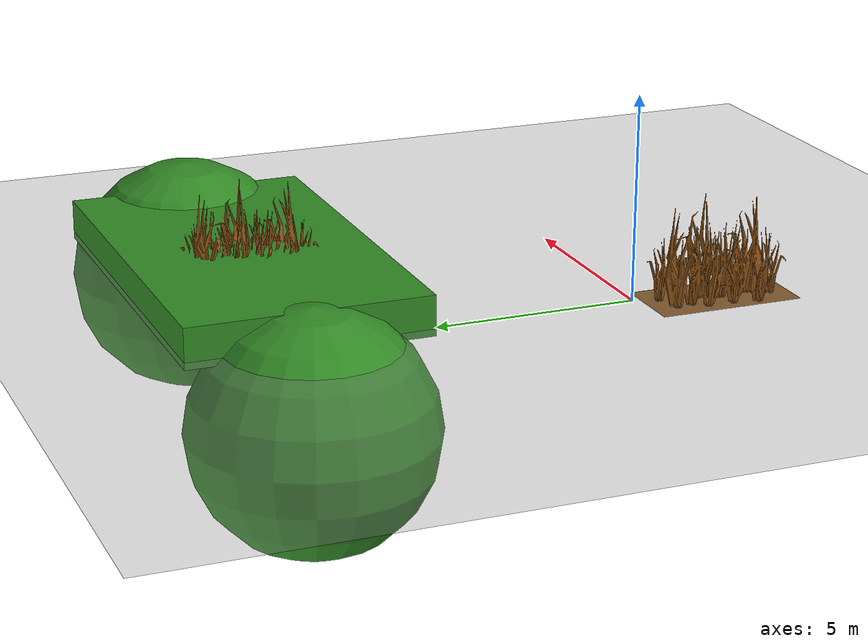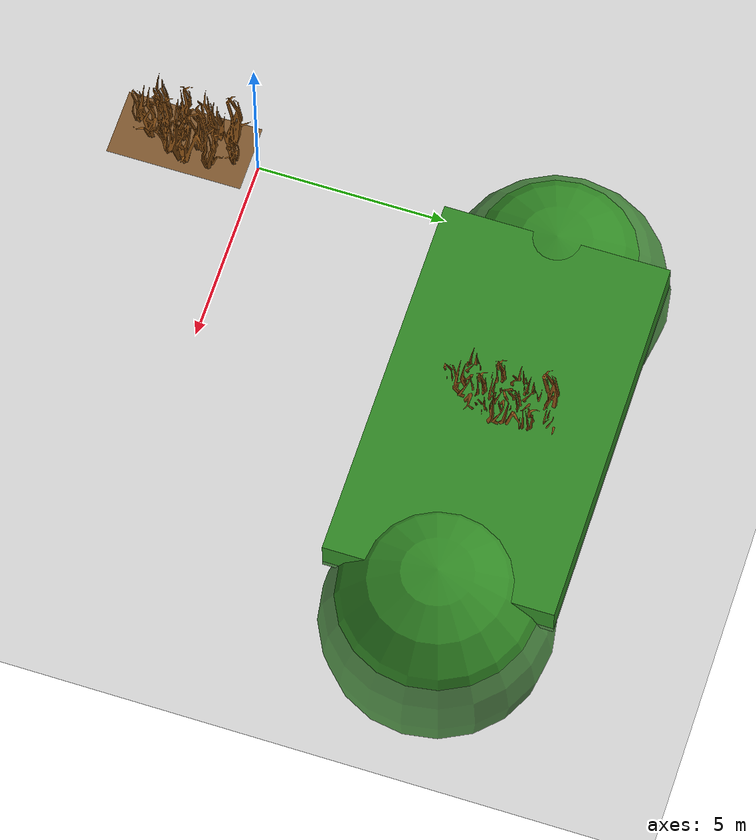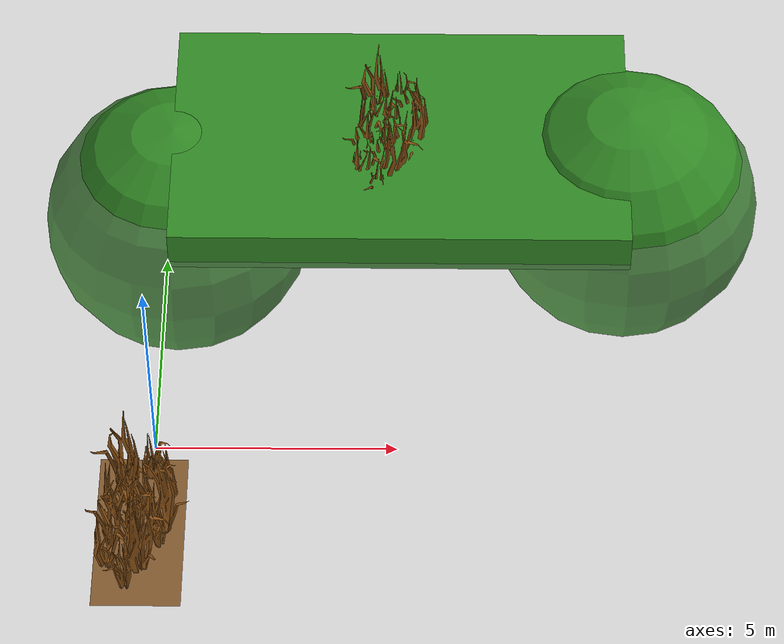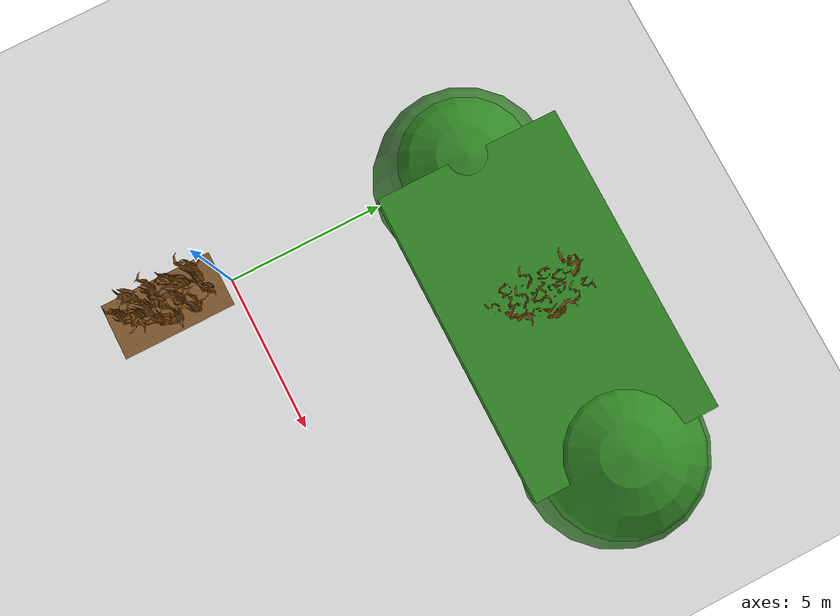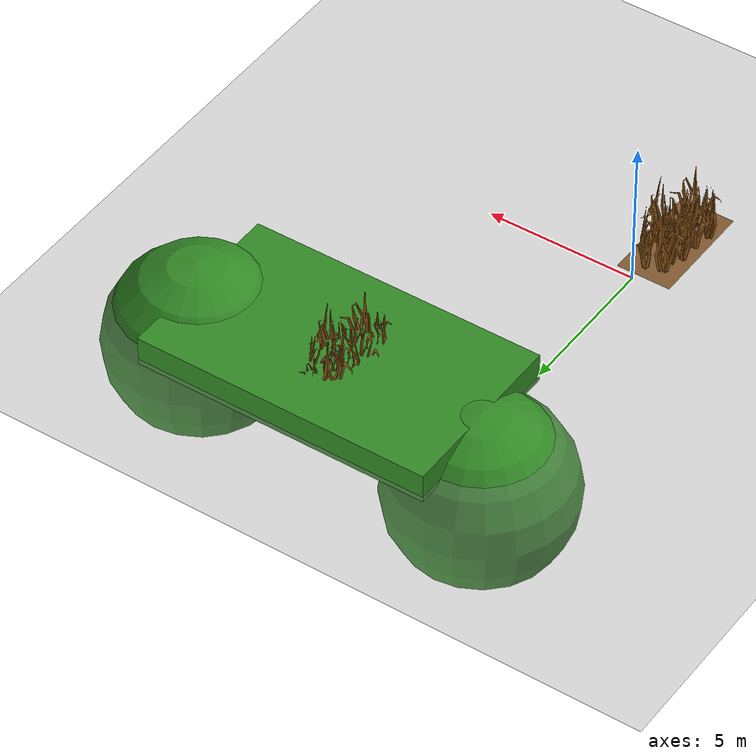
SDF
<sdf version="1.8">
 <world name="simple_trees">
  <light name="sun" type="directional">
   <pose>0 0 10 0 -0 0</pose>
   <diffuse>0.8 0.8 0.8 1</diffuse>
   <specular>0.2 0.2 0.2 1</specular>
   <attenuation>
    <range>1000</range>
    <constant>0.9</constant>
    <linear>0.01</linear>
    <quadratic>0.001</quadratic>
   </attenuation>
   <direction>-0.5 0.1 -0.9</direction>
  </light>
  <gravity>0 0 -9.81</gravity>
  <magnetic_field>6e-06 2.3e-05 -4.2e-05</magnetic_field>
  <atmosphere type="adiabatic"/>
  <physics name="default_physics" type="ignored">
   <max_step_size>0.01</max_step_size>
   <real_time_factor>1</real_time_factor>
   <real_time_update_rate>100</real_time_update_rate>
  </physics>
  <scene><ambient>1.0 1.0 1.0</ambient><background>0.8 0.8 0.8</background><shadows>false</shadows></scene>
  <spherical_coordinates>
   <latitude_deg>0.0</latitude_deg>
   <longitude_deg>0.0</longitude_deg>
   <elevation>10.0</elevation>
   <heading_deg>0</heading_deg>
   <surface_model>EARTH_WGS84</surface_model>
  </spherical_coordinates>
  <include><uri>model://grass_plane</uri><name>grass_plane</name></include>
  <include>
   <uri>model://Dry_Grass</uri>
   <name>dry_grass</name>
   <pose>0 -2 0 0 0 0</pose>
   <static>true</static>
  </include>
  <include>
   <uri>model://Dry_Grass</uri>
   <name>dry_grass_2</name>
   <pose>5 8 0 0 0 0</pose>
   <static>true</static>
  </include>
  <model name="hill_1">
   <static>true</static>
   <pose>0 8 -2.1 0 0 0</pose>
   <link name="hill_link">
    <collision name="collision"><geometry><sphere><radius>3</radius></sphere></geometry></collision>
    <visual name="visual">
     <geometry><sphere><radius>3</radius></sphere></geometry>
     <material><ambient>0.15 0.45 0.10 1</ambient><diffuse>0.20 0.55 0.15 1</diffuse></material>
    </visual>
   </link>
  </model>
  <model name="top_of_hill">
   <static>true</static>
   <pose>5 8 0.3 0 0 0</pose>
   <link name="block_link">
    <collision name="block_collision"><geometry><box><size>10 6 1</size></box></geometry></collision>
    <visual name="block_visual">
     <geometry><box><size>10 6 1</size></box></geometry>
     <material><ambient>0.15 0.45 0.10 1</ambient><diffuse>0.20 0.55 0.15 1</diffuse></material>
    </visual>
   </link>
  </model>
  <model name="hill_2">
   <static>true</static>
   <pose>10 8 -1.5 0 0 0</pose>
   <link name="hill_link">
    <collision name="collision"><geometry><sphere><radius>3</radius></sphere></geometry></collision>
    <visual name="visual">
     <geometry><sphere><radius>3</radius></sphere></geometry>
     <material><ambient>0.15 0.45 0.10 1</ambient><diffuse>0.20 0.55 0.15 1</diffuse></material>
    </visual>
   </link>
  </model>
 </world>
</sdf>

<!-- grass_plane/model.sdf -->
<sdf version="1.7">
<model name="grass_plane">
    <static>true</static>
    <link name="link">
        <collision name="collision">
            <geometry>
            <box>
                <size>30 30 0.01</size>
            </box>
            </geometry>
        </collision>
        <visual name="visual">
            <cast_shadows>false</cast_shadows>
            <geometry>
            <plane>
                <normal>0 0 1</normal>
                <size>30 30</size>
            </plane>
            </geometry>
            <material>
                <ambient>0.5 0.5 0.5 1</ambient>
                <diffuse>0.5 0.5 0.5 1</diffuse>
                <specular>0.2 0.2 0.2 1</specular>
                <pbr>
                    <metal>
                    <albedo_map>
                        model://grass_plane/materials/textures/empty_grass.png
                    </albedo_map>
                    </metal>
                </pbr>
            </material>
        </visual>
    </link>
</model>
</sdf>

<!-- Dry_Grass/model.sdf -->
<sdf version="1.6">
  <model name="dry_grass">
    <static>true</static>

    <link name="grass">
      <visual name="grass_visual">
        <!-- Put the down slightly so its base sits below the image. -->
        <pose>0 0 -0.03 0 0 0</pose>

        <geometry>
          <mesh>
            <uri>model://Dry_Grass/meshes/drygrass.dae</uri>
            <scale>1 1 1</scale>
          </mesh>
        </geometry>

        <material>
          <ambient>0.35 0.20 0.05 1</ambient>
          <diffuse>0.55 0.32 0.08 1</diffuse>
          <specular>0.05 0.05 0.05 1</specular>
        </material>

      </visual>
    </link>
  </model>
</sdf>
